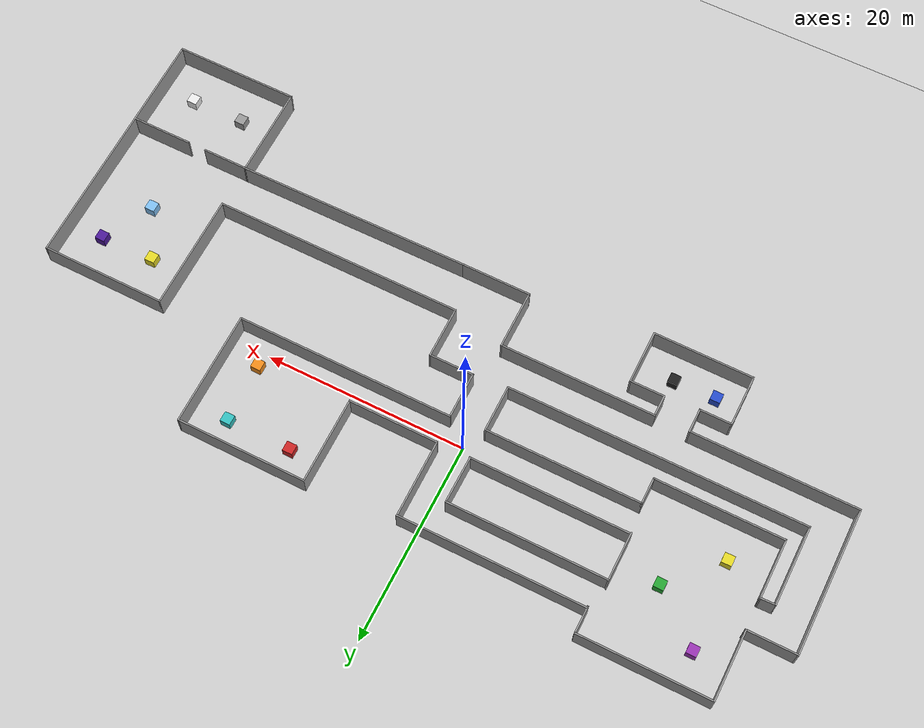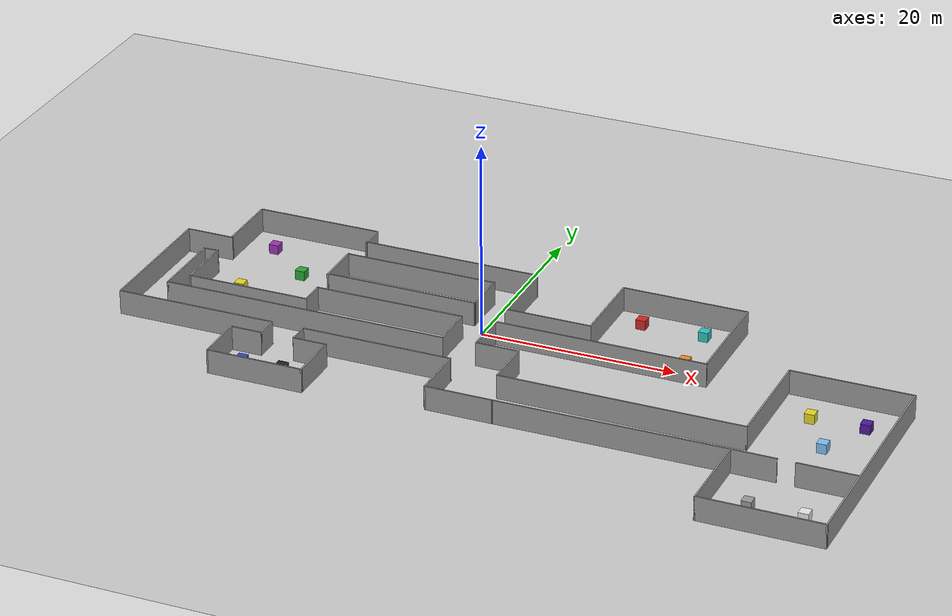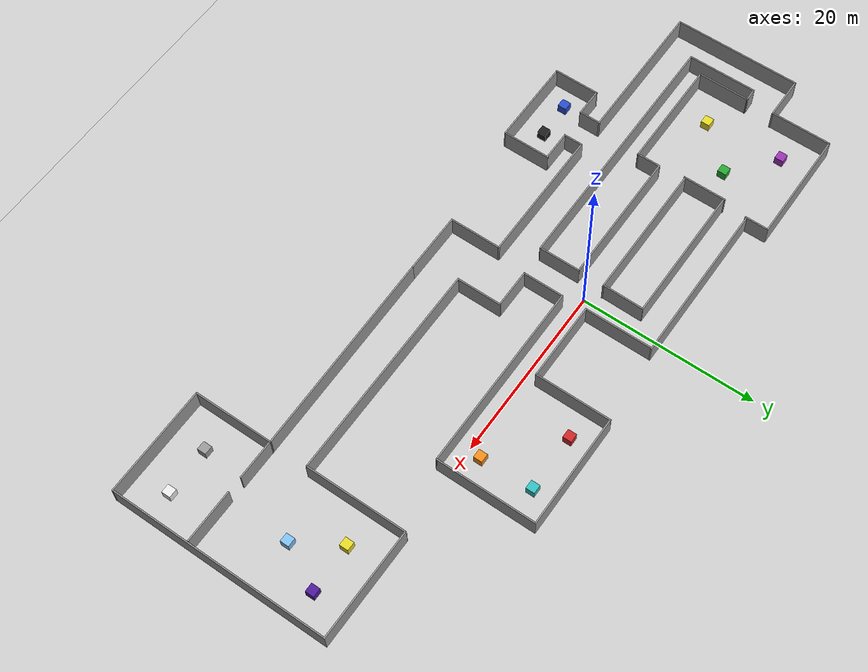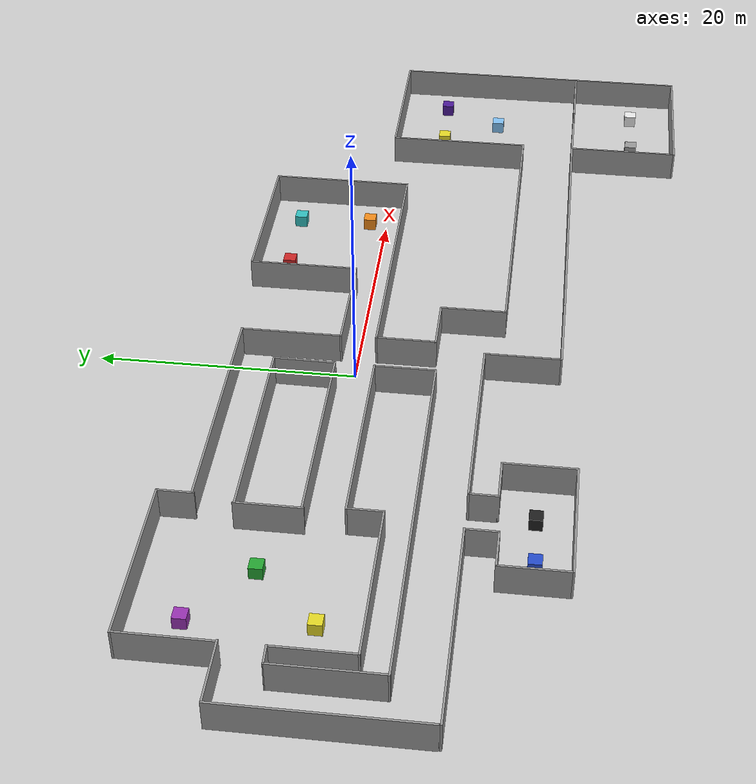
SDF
<sdf version="1.6">
 <world name="default">
  <light name="sun" type="directional">
   <pose>0 0 10 0 -0 0</pose>
   <diffuse>0.8 0.8 0.8 1</diffuse>
   <specular>0.2 0.2 0.2 1</specular>
   <attenuation>
    <range>1000</range>
    <constant>0.9</constant>
    <linear>0.01</linear>
    <quadratic>0.001</quadratic>
   </attenuation>
   <direction>-0.5 0.1 -0.9</direction>
  </light>
  <model name="ground_plane">
   <static>1</static>
   <link name="link">
    <collision name="collision">
     <geometry><plane><normal>0 0 1</normal><size>100 100</size></plane></geometry>
     <surface><friction><ode><mu>100</mu><mu2>50</mu2></ode></friction></surface>
    </collision>
    <visual name="visual">
     <cast_shadows>0</cast_shadows>
     <geometry><plane><normal>0 0 1</normal><size>100 100</size></plane></geometry>
     <material>
      <script><uri>file://media/materials/scripts/gazebo.material</uri><name>Gazebo/Grey</name></script>
     </material>
    </visual>
    <velocity_decay><linear>0</linear><angular>0</angular></velocity_decay>
   </link>
  </model>
  <physics type="ode">
   <gravity>0.000000 0.000000 -9.810000</gravity>
   <ode>
    <solver><type>quick</type><iters>20</iters><sor>1.000000</sor></solver>
    <constraints>
     <cfm>0.000000</cfm>
     <erp>0.200000</erp>
     <contact_max_correcting_vel>100.000000</contact_max_correcting_vel>
     <contact_surface_layer>0.000000</contact_surface_layer>
    </constraints>
   </ode>
   <real_time_update_rate>1000.000000</real_time_update_rate>
   <max_step_size>0.001000</max_step_size>
   <real_time_factor>1.000000</real_time_factor>
   <max_contacts>20</max_contacts>
  </physics>
  <real_time_update_rate>1000</real_time_update_rate>
  <gravity>0 0 -9.81</gravity>
  <scene><ambient>0.4 0.4 0.4 1</ambient><background>0.7 0.7 0.7 1</background><shadows>1</shadows></scene>
  <spherical_coordinates>
   <surface_model>EARTH_WGS84</surface_model>
   <latitude_deg>0</latitude_deg>
   <longitude_deg>0</longitude_deg>
   <elevation>0</elevation>
   <heading_deg>0</heading_deg>
  </spherical_coordinates>
  <model name="factory.world">
   <pose>4.7064 -6.5088 0 0 -0 0</pose>
   <link name="Wall_1">
    <collision name="Wall_1_Collision">
     <geometry><box><size>15.75 0.15 2.5</size></box></geometry>
     <pose>0 0 1.25 0 -0 0</pose>
    </collision>
    <visual name="Wall_1_Visual">
     <pose>0 0 1.25 0 -0 0</pose>
     <geometry><box><size>15.75 0.15 2.5</size></box></geometry>
     <material>
      <script><uri>file://media/materials/scripts/gazebo.material</uri><name>Gazebo/Grey</name></script>
      <ambient>1 1 1 1</ambient>
     </material>
     <meta><layer>0</layer></meta>
    </visual>
    <pose>-13.8517 7.84663 0 0 -0 0</pose>
   </link>
   <link name="Wall_10">
    <collision name="Wall_10_Collision">
     <geometry><box><size>15.8214 0.15 2.5</size></box></geometry>
     <pose>0 0 1.25 0 -0 0</pose>
    </collision>
    <visual name="Wall_10_Visual">
     <pose>0 0 1.25 0 -0 0</pose>
     <geometry><box><size>15.8214 0.15 2.5</size></box></geometry>
     <material>
      <script><uri>file://media/materials/scripts/gazebo.material</uri><name>Gazebo/Grey</name></script>
      <ambient>1 1 1 1</ambient>
     </material>
     <meta><layer>0</layer></meta>
    </visual>
    <pose>-13.8927 12.5223 0 0 -0 3.14146</pose>
   </link>
   <link name="Wall_16">
    <collision name="Wall_16_Collision">
     <geometry><box><size>18.5 0.15 2.5</size></box></geometry>
     <pose>0 0 1.25 0 -0 0</pose>
    </collision>
    <visual name="Wall_16_Visual">
     <pose>0 0 1.25 0 -0 0</pose>
     <geometry><box><size>18.5 0.15 2.5</size></box></geometry>
     <material>
      <script><uri>file://media/materials/scripts/gazebo.material</uri><name>Gazebo/Grey</name></script>
      <ambient>1 1 1 1</ambient>
     </material>
     <meta><layer>0</layer></meta>
    </visual>
    <pose>-11.9522 15.5984 0 0 -0 0</pose>
   </link>
   <link name="Wall_18">
    <collision name="Wall_18_Collision">
     <geometry><box><size>29.5 0.15 2.5</size></box></geometry>
     <pose>0 0 1.25 0 -0 0</pose>
    </collision>
    <visual name="Wall_18_Visual">
     <pose>0 0 1.25 0 -0 0</pose>
     <geometry><box><size>29.5 0.15 2.5</size></box></geometry>
     <material>
      <script><uri>file://media/materials/scripts/gazebo.material</uri><name>Gazebo/Grey</name></script>
      <ambient>1 1 1 1</ambient>
     </material>
     <meta><layer>0</layer></meta>
    </visual>
    <pose>-20.7862 0.187052 0 0 -0 0</pose>
   </link>
   <link name="Wall_2">
    <collision name="Wall_2_Collision">
     <geometry><box><size>4.79572 0.15 2.5</size></box></geometry>
     <pose>0 0 1.25 0 -0 0</pose>
    </collision>
    <visual name="Wall_2_Visual">
     <pose>0 0 1.25 0 -0 0</pose>
     <geometry><box><size>4.79572 0.15 2.5</size></box></geometry>
     <material>
      <script><uri>file://media/materials/scripts/gazebo.material</uri><name>Gazebo/Grey</name></script>
      <ambient>1 1 1 1</ambient>
     </material>
     <meta><layer>0</layer></meta>
    </visual>
    <pose>-6.06672 10.1694 0 0 -0 1.55761</pose>
   </link>
   <link name="Wall_22">
    <collision name="Wall_22_Collision">
     <geometry><box><size>4.75 0.15 2.5</size></box></geometry>
     <pose>0 0 1.25 0 -0 0</pose>
    </collision>
    <visual name="Wall_22_Visual">
     <pose>0 0 1.25 0 -0 0</pose>
     <geometry><box><size>4.75 0.15 2.5</size></box></geometry>
     <material>
      <script><uri>file://media/materials/scripts/gazebo.material</uri><name>Gazebo/Grey</name></script>
      <ambient>1 1 1 1</ambient>
     </material>
     <meta><layer>0</layer></meta>
    </visual>
    <pose>-6.10479 2.53652 0 0 0 -1.5708</pose>
   </link>
   <link name="Wall_24">
    <collision name="Wall_24_Collision">
     <geometry><box><size>5 0.15 2.5</size></box></geometry>
     <pose>0 0 1.25 0 -0 0</pose>
    </collision>
    <visual name="Wall_24_Visual">
     <pose>0 0 1.25 0 -0 0</pose>
     <geometry><box><size>5 0.15 2.5</size></box></geometry>
     <material>
      <script><uri>file://media/materials/scripts/gazebo.material</uri><name>Gazebo/Grey</name></script>
      <ambient>1 1 1 1</ambient>
     </material>
     <meta><layer>0</layer></meta>
    </visual>
    <pose>-21.7643 10.1851 0 0 0 -1.5708</pose>
   </link>
   <link name="Wall_26">
    <collision name="Wall_26_Collision">
     <geometry><box><size>2.75 0.15 2.5</size></box></geometry>
     <pose>0 0 1.25 0 -0 0</pose>
    </collision>
    <visual name="Wall_26_Visual">
     <pose>0 0 1.25 0 -0 0</pose>
     <geometry><box><size>2.75 0.15 2.5</size></box></geometry>
     <material>
      <script><uri>file://media/materials/scripts/gazebo.material</uri><name>Gazebo/Grey</name></script>
      <ambient>1 1 1 1</ambient>
     </material>
     <meta><layer>0</layer></meta>
    </visual>
    <pose>-21.4548 3.53652 0 0 0 -1.5708</pose>
   </link>
   <link name="Wall_27">
    <collision name="Wall_27_Collision">
     <geometry><box><size>12.75 0.15 2.5</size></box></geometry>
     <pose>0 0 1.25 0 -0 0</pose>
    </collision>
    <visual name="Wall_27_Visual">
     <pose>0 0 1.25 0 -0 0</pose>
     <geometry><box><size>12.75 0.15 2.5</size></box></geometry>
     <material>
      <script><uri>file://media/materials/scripts/gazebo.material</uri><name>Gazebo/Grey</name></script>
      <ambient>1 1 1 1</ambient>
     </material>
     <meta><layer>0</layer></meta>
    </visual>
    <pose>-27.7548 2.23652 0 0 -0 3.14159</pose>
   </link>
   <link name="Wall_29">
    <collision name="Wall_29_Collision">
     <geometry><box><size>13 0.15 2.5</size></box></geometry>
     <pose>0 0 1.25 0 -0 0</pose>
    </collision>
    <visual name="Wall_29_Visual">
     <pose>0 0 1.25 0 -0 0</pose>
     <geometry><box><size>13 0.15 2.5</size></box></geometry>
     <material>
      <script><uri>file://media/materials/scripts/gazebo.material</uri><name>Gazebo/Grey</name></script>
      <ambient>1 1 1 1</ambient>
     </material>
     <meta><layer>0</layer></meta>
    </visual>
    <pose>-27.6298 18.0865 0 0 -0 0</pose>
   </link>
   <link name="Wall_31">
    <collision name="Wall_31_Collision">
     <geometry><box><size>2.75 0.15 2.5</size></box></geometry>
     <pose>0 0 1.25 0 -0 0</pose>
    </collision>
    <visual name="Wall_31_Visual">
     <pose>0 0 1.25 0 -0 0</pose>
     <geometry><box><size>2.75 0.15 2.5</size></box></geometry>
     <material>
      <script><uri>file://media/materials/scripts/gazebo.material</uri><name>Gazebo/Grey</name></script>
      <ambient>1 1 1 1</ambient>
     </material>
     <meta><layer>0</layer></meta>
    </visual>
    <pose>-21.1712 16.7852 0 0 0 -1.5708</pose>
   </link>
   <link name="Wall_33">
    <collision name="Wall_33_Collision">
     <geometry><box><size>14.5 0.15 2.5</size></box></geometry>
     <pose>0 0 1.25 0 -0 0</pose>
    </collision>
    <visual name="Wall_33_Visual">
     <pose>0 0 1.25 0 -0 0</pose>
     <geometry><box><size>14.5 0.15 2.5</size></box></geometry>
     <material>
      <script><uri>file://media/materials/scripts/gazebo.material</uri><name>Gazebo/Grey</name></script>
      <ambient>1 1 1 1</ambient>
     </material>
     <meta><layer>0</layer></meta>
    </visual>
    <pose>-38.8491 4.05071 0 0 -0 1.5708</pose>
   </link>
   <link name="Wall_34">
    <collision name="Wall_34_Collision">
     <geometry><box><size>5 0.15 2.5</size></box></geometry>
     <pose>0 0 1.25 0 -0 0</pose>
    </collision>
    <visual name="Wall_34_Visual">
     <pose>0 0 1.25 0 -0 0</pose>
     <geometry><box><size>5 0.15 2.5</size></box></geometry>
     <material>
      <script><uri>file://media/materials/scripts/gazebo.material</uri><name>Gazebo/Grey</name></script>
      <ambient>1 1 1 1</ambient>
     </material>
     <meta><layer>0</layer></meta>
    </visual>
    <pose>-36.4241 11.2257 0 0 -0 0</pose>
   </link>
   <link name="Wall_36">
    <collision name="Wall_36_Collision">
     <geometry><box><size>7 0.15 2.5</size></box></geometry>
     <pose>0 0 1.25 0 -0 0</pose>
    </collision>
    <visual name="Wall_36_Visual">
     <pose>0 0 1.25 0 -0 0</pose>
     <geometry><box><size>7 0.15 2.5</size></box></geometry>
     <material>
      <script><uri>file://media/materials/scripts/gazebo.material</uri><name>Gazebo/Grey</name></script>
      <ambient>1 1 1 1</ambient>
     </material>
     <meta><layer>0</layer></meta>
    </visual>
    <pose>-34.0548 14.6615 0 0 0 -1.5708</pose>
   </link>
   <link name="Wall_38">
    <collision name="Wall_38_Collision">
     <geometry><box><size>6 0.15 2.5</size></box></geometry>
     <pose>0 0 1.25 0 -0 0</pose>
    </collision>
    <visual name="Wall_38_Visual">
     <pose>0 0 1.25 0 -0 0</pose>
     <geometry><box><size>6 0.15 2.5</size></box></geometry>
     <material>
      <script><uri>file://media/materials/scripts/gazebo.material</uri><name>Gazebo/Grey</name></script>
      <ambient>1 1 1 1</ambient>
     </material>
     <meta><layer>0</layer></meta>
    </visual>
    <pose>-34.0548 5.16152 0 0 -0 1.5708</pose>
   </link>
   <link name="Wall_40">
    <collision name="Wall_40_Collision">
     <geometry><box><size>8 0.15 2.5</size></box></geometry>
     <pose>0 0 1.25 0 -0 0</pose>
    </collision>
    <visual name="Wall_40_Visual">
     <pose>0 0 1.25 0 -0 0</pose>
     <geometry><box><size>8 0.15 2.5</size></box></geometry>
     <material>
      <script><uri>file://media/materials/scripts/gazebo.material</uri><name>Gazebo/Grey</name></script>
      <ambient>1 1 1 1</ambient>
     </material>
     <meta><layer>0</layer></meta>
    </visual>
    <pose>-35.4612 4.11205 0 0 -0 1.5708</pose>
   </link>
   <link name="Wall_41">
    <collision name="Wall_41_Collision">
     <geometry><box><size>1.55732 0.15 2.5</size></box></geometry>
     <pose>0 0 1.25 0 -0 0</pose>
    </collision>
    <visual name="Wall_41_Visual">
     <pose>0 0 1.25 0 -0 0</pose>
     <geometry><box><size>1.55732 0.15 2.5</size></box></geometry>
     <material>
      <script><uri>file://media/materials/scripts/gazebo.material</uri><name>Gazebo/Grey</name></script>
      <ambient>1 1 1 1</ambient>
     </material>
     <meta><layer>0</layer></meta>
    </visual>
    <pose>-34.758 8.06178 0 0 -0 0.035155</pose>
   </link>
   <link name="Wall_43">
    <collision name="Wall_43_Collision">
     <geometry><box><size>9 0.15 2.5</size></box></geometry>
     <pose>0 0 1.25 0 -0 0</pose>
    </collision>
    <visual name="Wall_43_Visual">
     <pose>0 0 1.25 0 -0 0</pose>
     <geometry><box><size>9 0.15 2.5</size></box></geometry>
     <material>
      <script><uri>file://media/materials/scripts/gazebo.material</uri><name>Gazebo/Grey</name></script>
      <ambient>1 1 1 1</ambient>
     </material>
     <meta><layer>0</layer></meta>
    </visual>
    <pose>1.62408 7.86349 0 0 -0 0</pose>
   </link>
   <link name="Wall_44">
    <collision name="Wall_44_Collision">
     <geometry><box><size>8.75 0.15 2.5</size></box></geometry>
     <pose>0 0 1.25 0 -0 0</pose>
    </collision>
    <visual name="Wall_44_Visual">
     <pose>0 0 1.25 0 -0 0</pose>
     <geometry><box><size>8.75 0.15 2.5</size></box></geometry>
     <material>
      <script><uri>file://media/materials/scripts/gazebo.material</uri><name>Gazebo/Grey</name></script>
      <ambient>1 1 1 1</ambient>
     </material>
     <meta><layer>0</layer></meta>
    </visual>
    <pose>6.04908 12.1635 0 0 -0 1.5708</pose>
   </link>
   <link name="Wall_45">
    <collision name="Wall_45_Collision">
     <geometry><box><size>13 0.15 2.5</size></box></geometry>
     <pose>0 0 1.25 0 -0 0</pose>
    </collision>
    <visual name="Wall_45_Visual">
     <pose>0 0 1.25 0 -0 0</pose>
     <geometry><box><size>13 0.15 2.5</size></box></geometry>
     <material>
      <script><uri>file://media/materials/scripts/gazebo.material</uri><name>Gazebo/Grey</name></script>
      <ambient>1 1 1 1</ambient>
     </material>
     <meta><layer>0</layer></meta>
    </visual>
    <pose>12.4741 16.4635 0 0 -0 0</pose>
   </link>
   <link name="Wall_46">
    <collision name="Wall_46_Collision">
     <geometry><box><size>11.5 0.15 2.5</size></box></geometry>
     <pose>0 0 1.25 0 -0 0</pose>
    </collision>
    <visual name="Wall_46_Visual">
     <pose>0 0 1.25 0 -0 0</pose>
     <geometry><box><size>11.5 0.15 2.5</size></box></geometry>
     <material>
      <script><uri>file://media/materials/scripts/gazebo.material</uri><name>Gazebo/Grey</name></script>
      <ambient>1 1 1 1</ambient>
     </material>
     <meta><layer>0</layer></meta>
    </visual>
    <pose>18.8991 10.7885 0 0 0 -1.5708</pose>
   </link>
   <link name="Wall_47">
    <collision name="Wall_47_Collision">
     <geometry><box><size>21.75 0.15 2.5</size></box></geometry>
     <pose>0 0 1.25 0 -0 0</pose>
    </collision>
    <visual name="Wall_47_Visual">
     <pose>0 0 1.25 0 -0 0</pose>
     <geometry><box><size>21.75 0.15 2.5</size></box></geometry>
     <material>
      <script><uri>file://media/materials/scripts/gazebo.material</uri><name>Gazebo/Grey</name></script>
      <ambient>1 1 1 1</ambient>
     </material>
     <meta><layer>0</layer></meta>
    </visual>
    <pose>8.09908 5.11349 0 0 -0 3.14159</pose>
   </link>
   <link name="Wall_48">
    <collision name="Wall_48_Collision">
     <geometry><box><size>4.75 0.15 2.5</size></box></geometry>
     <pose>0 0 1.25 0 -0 0</pose>
    </collision>
    <visual name="Wall_48_Visual">
     <pose>0 0 1.25 0 -0 0</pose>
     <geometry><box><size>4.75 0.15 2.5</size></box></geometry>
     <material>
      <script><uri>file://media/materials/scripts/gazebo.material</uri><name>Gazebo/Grey</name></script>
      <ambient>1 1 1 1</ambient>
     </material>
     <meta><layer>0</layer></meta>
    </visual>
    <pose>-2.70092 2.81349 0 0 0 -1.5708</pose>
   </link>
   <link name="Wall_49">
    <collision name="Wall_49_Collision">
     <geometry><box><size>4.5 0.15 2.5</size></box></geometry>
     <pose>0 0 1.25 0 -0 0</pose>
    </collision>
    <visual name="Wall_49_Visual">
     <pose>0 0 1.25 0 -0 0</pose>
     <geometry><box><size>4.5 0.15 2.5</size></box></geometry>
     <material>
      <script><uri>file://media/materials/scripts/gazebo.material</uri><name>Gazebo/Grey</name></script>
      <ambient>1 1 1 1</ambient>
     </material>
     <meta><layer>0</layer></meta>
    </visual>
    <pose>-0.525921 0.513486 0 0 -0 0</pose>
   </link>
   <link name="Wall_5">
    <collision name="Wall_5_Collision">
     <geometry><box><size>7.75 0.15 2.5</size></box></geometry>
     <pose>0 0 1.25 0 -0 0</pose>
    </collision>
    <visual name="Wall_5_Visual">
     <pose>0 0 1.25 0 -0 0</pose>
     <geometry><box><size>7.75 0.15 2.5</size></box></geometry>
     <material>
      <script><uri>file://media/materials/scripts/gazebo.material</uri><name>Gazebo/Grey</name></script>
      <ambient>1 1 1 1</ambient>
     </material>
     <meta><layer>0</layer></meta>
    </visual>
    <pose>-2.80092 11.6635 0 0 -0 1.5708</pose>
   </link>
   <link name="Wall_50">
    <collision name="Wall_50_Collision">
     <geometry><box><size>5.25 0.15 2.5</size></box></geometry>
     <pose>0 0 1.25 0 -0 0</pose>
    </collision>
    <visual name="Wall_50_Visual">
     <pose>0 0 1.25 0 -0 0</pose>
     <geometry><box><size>5.25 0.15 2.5</size></box></geometry>
     <material>
      <script><uri>file://media/materials/scripts/gazebo.material</uri><name>Gazebo/Grey</name></script>
      <ambient>1 1 1 1</ambient>
     </material>
     <meta><layer>0</layer></meta>
    </visual>
    <pose>1.64908 -2.03651 0 0 0 -1.5708</pose>
   </link>
   <link name="Wall_51">
    <collision name="Wall_51_Collision">
     <geometry><box><size>25 0.15 2.5</size></box></geometry>
     <pose>0 0 1.25 0 -0 0</pose>
    </collision>
    <visual name="Wall_51_Visual">
     <pose>0 0 1.25 0 -0 0</pose>
     <geometry><box><size>25 0.15 2.5</size></box></geometry>
     <material>
      <script><uri>file://media/materials/scripts/gazebo.material</uri><name>Gazebo/Grey</name></script>
      <ambient>1 1 1 1</ambient>
     </material>
     <meta><layer>0</layer></meta>
    </visual>
    <pose>14.0741 -4.58651 0 0 -0 0</pose>
   </link>
   <link name="Wall_52">
    <collision name="Wall_52_Collision">
     <geometry><box><size>11.75 0.15 2.5</size></box></geometry>
     <pose>0 0 1.25 0 -0 0</pose>
    </collision>
    <visual name="Wall_52_Visual">
     <pose>0 0 1.25 0 -0 0</pose>
     <geometry><box><size>11.75 0.15 2.5</size></box></geometry>
     <material>
      <script><uri>file://media/materials/scripts/gazebo.material</uri><name>Gazebo/Grey</name></script>
      <ambient>1 1 1 1</ambient>
     </material>
     <meta><layer>0</layer></meta>
    </visual>
    <pose>26.4991 1.21349 0 0 -0 1.5708</pose>
   </link>
   <link name="Wall_53">
    <collision name="Wall_53_Collision">
     <geometry><box><size>12.5 0.15 2.5</size></box></geometry>
     <pose>0 0 1.25 0 -0 0</pose>
    </collision>
    <visual name="Wall_53_Visual">
     <pose>0 0 1.25 0 -0 0</pose>
     <geometry><box><size>12.5 0.15 2.5</size></box></geometry>
     <material>
      <script><uri>file://media/materials/scripts/gazebo.material</uri><name>Gazebo/Grey</name></script>
      <ambient>1 1 1 1</ambient>
     </material>
     <meta><layer>0</layer></meta>
    </visual>
    <pose>32.6741 7.01349 0 0 -0 0</pose>
   </link>
   <link name="Wall_54">
    <collision name="Wall_54_Collision">
     <geometry><box><size>25.25 0.15 2.5</size></box></geometry>
     <pose>0 0 1.25 0 -0 0</pose>
    </collision>
    <visual name="Wall_54_Visual">
     <pose>0 0 1.25 0 -0 0</pose>
     <geometry><box><size>25.25 0.15 2.5</size></box></geometry>
     <material>
      <script><uri>file://media/materials/scripts/gazebo.material</uri><name>Gazebo/Grey</name></script>
      <ambient>1 1 1 1</ambient>
     </material>
     <meta><layer>0</layer></meta>
    </visual>
    <pose>38.8491 -5.53651 0 0 0 -1.5708</pose>
   </link>
   <link name="Wall_55">
    <collision name="Wall_55_Collision">
     <geometry><box><size>12.5 0.15 2.5</size></box></geometry>
     <pose>0 0 1.25 0 -0 0</pose>
    </collision>
    <visual name="Wall_55_Visual">
     <pose>0 0 1.25 0 -0 0</pose>
     <geometry><box><size>12.5 0.15 2.5</size></box></geometry>
     <material>
      <script><uri>file://media/materials/scripts/gazebo.material</uri><name>Gazebo/Grey</name></script>
      <ambient>1 1 1 1</ambient>
     </material>
     <meta><layer>0</layer></meta>
    </visual>
    <pose>32.6741 -18.0865 0 0 -0 3.14159</pose>
   </link>
   <link name="Wall_56">
    <collision name="Wall_56_Collision">
     <geometry><box><size>9.25 0.15 2.5</size></box></geometry>
     <pose>0 0 1.25 0 -0 0</pose>
    </collision>
    <visual name="Wall_56_Visual">
     <pose>0 0 1.25 0 -0 0</pose>
     <geometry><box><size>9.25 0.15 2.5</size></box></geometry>
     <material>
      <script><uri>file://media/materials/scripts/gazebo.material</uri><name>Gazebo/Grey</name></script>
      <ambient>1 1 1 1</ambient>
     </material>
     <meta><layer>0</layer></meta>
    </visual>
    <pose>26.4991 -13.5365 0 0 -0 1.5708</pose>
   </link>
   <link name="Wall_57">
    <collision name="Wall_57_Collision">
     <geometry><box><size>23.5207 0.15 2.5</size></box></geometry>
     <pose>0 0 1.25 0 -0 0</pose>
    </collision>
    <visual name="Wall_57_Visual">
     <pose>0 0 1.25 0 -0 0</pose>
     <geometry><box><size>23.5207 0.15 2.5</size></box></geometry>
     <material>
      <script><uri>file://media/materials/scripts/gazebo.material</uri><name>Gazebo/Grey</name></script>
      <ambient>1 1 1 1</ambient>
     </material>
     <meta><layer>0</layer></meta>
    </visual>
    <pose>14.8141 -9.07777 0 0 0 -3.13378</pose>
   </link>
   <link name="Wall_60">
    <collision name="Wall_60_Collision">
     <geometry><box><size>7 0.15 2.5</size></box></geometry>
     <pose>0 0 1.25 0 -0 0</pose>
    </collision>
    <visual name="Wall_60_Visual">
     <pose>0 0 1.25 0 -0 0</pose>
     <geometry><box><size>7 0.15 2.5</size></box></geometry>
     <material>
      <script><uri>file://media/materials/scripts/gazebo.material</uri><name>Gazebo/Grey</name></script>
      <ambient>1 1 1 1</ambient>
     </material>
     <meta><layer>0</layer></meta>
    </visual>
    <pose>-0.295901 -9.16902 0 0 -0 3.14159</pose>
   </link>
   <link name="Wall_61">
    <collision name="Wall_61_Collision">
     <geometry><box><size>6 0.15 2.5</size></box></geometry>
     <pose>0 0 1.25 0 -0 0</pose>
    </collision>
    <visual name="Wall_61_Visual">
     <pose>0 0 1.25 0 -0 0</pose>
     <geometry><box><size>6 0.15 2.5</size></box></geometry>
     <material>
      <script><uri>file://media/materials/scripts/gazebo.material</uri><name>Gazebo/Grey</name></script>
      <ambient>1 1 1 1</ambient>
     </material>
     <meta><layer>0</layer></meta>
    </visual>
    <pose>-3.7209 -6.24402 0 0 -0 1.5708</pose>
   </link>
   <link name="Wall_65">
    <collision name="Wall_65_Collision">
     <geometry><box><size>15.5 0.15 2.5</size></box></geometry>
     <pose>0 0 1.25 0 -0 0</pose>
    </collision>
    <visual name="Wall_65_Visual">
     <pose>0 0 1.25 0 -0 0</pose>
     <geometry><box><size>15.5 0.15 2.5</size></box></geometry>
     <material>
      <script><uri>file://media/materials/scripts/gazebo.material</uri><name>Gazebo/Grey</name></script>
      <ambient>1 1 1 1</ambient>
     </material>
     <meta><layer>0</layer></meta>
    </visual>
    <pose>-11.3959 -3.31902 0 0 -0 3.14159</pose>
   </link>
   <link name="Wall_66">
    <collision name="Wall_66_Collision">
     <geometry><box><size>2.25 0.15 2.5</size></box></geometry>
     <pose>0 0 1.25 0 -0 0</pose>
    </collision>
    <visual name="Wall_66_Visual">
     <pose>0 0 1.25 0 -0 0</pose>
     <geometry><box><size>2.25 0.15 2.5</size></box></geometry>
     <material>
      <script><uri>file://media/materials/scripts/gazebo.material</uri><name>Gazebo/Grey</name></script>
      <ambient>1 1 1 1</ambient>
     </material>
     <meta><layer>0</layer></meta>
    </visual>
    <pose>-19.0709 -4.36902 0 0 0 -1.5708</pose>
   </link>
   <link name="Wall_67">
    <collision name="Wall_67_Collision">
     <geometry><box><size>3.5 0.15 2.5</size></box></geometry>
     <pose>0 0 1.25 0 -0 0</pose>
    </collision>
    <visual name="Wall_67_Visual">
     <pose>0 0 1.25 0 -0 0</pose>
     <geometry><box><size>3.5 0.15 2.5</size></box></geometry>
     <material>
      <script><uri>file://media/materials/scripts/gazebo.material</uri><name>Gazebo/Grey</name></script>
      <ambient>1 1 1 1</ambient>
     </material>
     <meta><layer>0</layer></meta>
    </visual>
    <pose>-17.3959 -5.41902 0 0 -0 0</pose>
   </link>
   <link name="Wall_68">
    <collision name="Wall_68_Collision">
     <geometry><box><size>5.5 0.15 2.5</size></box></geometry>
     <pose>0 0 1.25 0 -0 0</pose>
    </collision>
    <visual name="Wall_68_Visual">
     <pose>0 0 1.25 0 -0 0</pose>
     <geometry><box><size>5.5 0.15 2.5</size></box></geometry>
     <material>
      <script><uri>file://media/materials/scripts/gazebo.material</uri><name>Gazebo/Grey</name></script>
      <ambient>1 1 1 1</ambient>
     </material>
     <meta><layer>0</layer></meta>
    </visual>
    <pose>-15.7209 -8.09402 0 0 0 -1.5708</pose>
   </link>
   <link name="Wall_69">
    <collision name="Wall_69_Collision">
     <geometry><box><size>10 0.15 2.5</size></box></geometry>
     <pose>0 0 1.25 0 -0 0</pose>
    </collision>
    <visual name="Wall_69_Visual">
     <pose>0 0 1.25 0 -0 0</pose>
     <geometry><box><size>10 0.15 2.5</size></box></geometry>
     <material>
      <script><uri>file://media/materials/scripts/gazebo.material</uri><name>Gazebo/Grey</name></script>
      <ambient>1 1 1 1</ambient>
     </material>
     <meta><layer>0</layer></meta>
    </visual>
    <pose>-20.6459 -10.769 0 0 -0 3.14159</pose>
   </link>
   <link name="Wall_70">
    <collision name="Wall_70_Collision">
     <geometry><box><size>5.25 0.15 2.5</size></box></geometry>
     <pose>0 0 1.25 0 -0 0</pose>
    </collision>
    <visual name="Wall_70_Visual">
     <pose>0 0 1.25 0 -0 0</pose>
     <geometry><box><size>5.25 0.15 2.5</size></box></geometry>
     <material>
      <script><uri>file://media/materials/scripts/gazebo.material</uri><name>Gazebo/Grey</name></script>
      <ambient>1 1 1 1</ambient>
     </material>
     <meta><layer>0</layer></meta>
    </visual>
    <pose>-25.5709 -8.21902 0 0 -0 1.5708</pose>
   </link>
   <link name="Wall_71">
    <collision name="Wall_71_Collision">
     <geometry><box><size>3.25 0.15 2.5</size></box></geometry>
     <pose>0 0 1.25 0 -0 0</pose>
    </collision>
    <visual name="Wall_71_Visual">
     <pose>0 0 1.25 0 -0 0</pose>
     <geometry><box><size>3.25 0.15 2.5</size></box></geometry>
     <material>
      <script><uri>file://media/materials/scripts/gazebo.material</uri><name>Gazebo/Grey</name></script>
      <ambient>1 1 1 1</ambient>
     </material>
     <meta><layer>0</layer></meta>
    </visual>
    <pose>-24.0209 -5.66902 0 0 -0 0</pose>
   </link>
   <link name="Wall_72">
    <collision name="Wall_72_Collision">
     <geometry><box><size>2.5 0.15 2.5</size></box></geometry>
     <pose>0 0 1.25 0 -0 0</pose>
    </collision>
    <visual name="Wall_72_Visual">
     <pose>0 0 1.25 0 -0 0</pose>
     <geometry><box><size>2.5 0.15 2.5</size></box></geometry>
     <material>
      <script><uri>file://media/materials/scripts/gazebo.material</uri><name>Gazebo/Grey</name></script>
      <ambient>1 1 1 1</ambient>
     </material>
     <meta><layer>0</layer></meta>
    </visual>
    <pose>-22.4709 -4.49402 0 0 -0 1.5708</pose>
   </link>
   <link name="Wall_73">
    <collision name="Wall_73_Collision">
     <geometry><box><size>16.5 0.15 2.5</size></box></geometry>
     <pose>0 0 1.25 0 -0 0</pose>
    </collision>
    <visual name="Wall_73_Visual">
     <pose>0 0 1.25 0 -0 0</pose>
     <geometry><box><size>16.5 0.15 2.5</size></box></geometry>
     <material>
      <script><uri>file://media/materials/scripts/gazebo.material</uri><name>Gazebo/Grey</name></script>
      <ambient>1 1 1 1</ambient>
     </material>
     <meta><layer>0</layer></meta>
    </visual>
    <pose>-30.6459 -3.31902 0 0 -0 3.14159</pose>
   </link>
   <link name="Wall_75">
    <collision name="Wall_75_Collision">
     <geometry><box><size>4.5 0.15 2.5</size></box></geometry>
     <pose>0 0 1.25 0 -0 0</pose>
    </collision>
    <visual name="Wall_75_Visual">
     <pose>0 0 1.25 0 -0 0</pose>
     <geometry><box><size>4.5 0.15 2.5</size></box></geometry>
     <material>
      <script><uri>file://media/materials/scripts/gazebo.material</uri><name>Gazebo/Grey</name></script>
      <ambient>1 1 1 1</ambient>
     </material>
     <meta><layer>0</layer></meta>
    </visual>
    <pose>28.7438 -8.99987 0 0 -0 0</pose>
   </link>
   <link name="Wall_77">
    <collision name="Wall_77_Collision">
     <geometry><box><size>6 0.15 2.5</size></box></geometry>
     <pose>0 0 1.25 0 -0 0</pose>
    </collision>
    <visual name="Wall_77_Visual">
     <pose>0 0 1.25 0 -0 0</pose>
     <geometry><box><size>6 0.15 2.5</size></box></geometry>
     <material>
      <script><uri>file://media/materials/scripts/gazebo.material</uri><name>Gazebo/Grey</name></script>
      <ambient>1 1 1 1</ambient>
     </material>
     <meta><layer>0</layer></meta>
    </visual>
    <pose>35.74 -9.01356 0 0 -0 0</pose>
   </link>
   <link name="Wall_8">
    <collision name="Wall_8_Collision">
     <geometry><box><size>15.5 0.15 2.5</size></box></geometry>
     <pose>0 0 1.25 0 -0 0</pose>
    </collision>
    <visual name="Wall_8_Visual">
     <pose>0 0 1.25 0 -0 0</pose>
     <geometry><box><size>15.5 0.15 2.5</size></box></geometry>
     <material>
      <script><uri>file://media/materials/scripts/gazebo.material</uri><name>Gazebo/Grey</name></script>
      <ambient>1 1 1 1</ambient>
     </material>
     <meta><layer>0</layer></meta>
    </visual>
    <pose>-13.7798 4.83652 0 0 -0 0</pose>
   </link>
   <static>1</static>
  </model>
  <model name="unit_box">
   <pose>-26.0455 7.90506 0.499995 0 1e-05 0</pose>
   <link name="link">
    <inertial>
     <mass>1</mass>
     <inertia>
      <ixx>0.166667</ixx>
      <ixy>0</ixy>
      <ixz>0</ixz>
      <iyy>0.166667</iyy>
      <iyz>0</iyz>
      <izz>0.166667</izz>
     </inertia>
    </inertial>
    <collision name="collision"><geometry><box><size>1 1 1</size></box></geometry></collision>
    <visual name="visual">
     <geometry><box><size>1 1 1</size></box></geometry>
     <material>
      <script><name>Gazebo/Purple</name><uri>file://media/materials/scripts/gazebo.material</uri></script>
     </material>
    </visual>
   </link>
  </model>
  <model name="unit_box_0">
   <pose>-25.5649 -0.916975 0.499995 -1e-05 0 0</pose>
   <link name="link">
    <inertial>
     <mass>1</mass>
     <inertia>
      <ixx>0.166667</ixx>
      <ixy>0</ixy>
      <ixz>0</ixz>
      <iyy>0.166667</iyy>
      <iyz>0</iyz>
      <izz>0.166667</izz>
     </inertia>
    </inertial>
    <collision name="collision"><geometry><box><size>1 1 1</size></box></geometry></collision>
    <visual name="visual">
     <geometry><box><size>1 1 1</size></box></geometry>
     <material>
      <script><name>Gazebo/DarkYellow</name><uri>file://media/materials/scripts/gazebo.material</uri></script>
     </material>
    </visual>
   </link>
  </model>
  <model name="unit_box_1">
   <pose>-21.1547 3.78625 0.499995 0 1e-05 0</pose>
   <link name="link">
    <inertial>
     <mass>1</mass>
     <inertia>
      <ixx>0.166667</ixx>
      <ixy>0</ixy>
      <ixz>0</ixz>
      <iyy>0.166667</iyy>
      <iyz>0</iyz>
      <izz>0.166667</izz>
     </inertia>
    </inertial>
    <collision name="collision"><geometry><box><size>1 1 1</size></box></geometry></collision>
    <visual name="visual">
     <geometry><box><size>1 1 1</size></box></geometry>
     <material>
      <script><name>Gazebo/Green</name><uri>file://media/materials/scripts/gazebo.material</uri></script>
     </material>
    </visual>
   </link>
  </model>
  <model name="unit_box_2">
   <pose>13.7613 7.33983 0.499995 -1e-05 0 0</pose>
   <link name="link">
    <inertial>
     <mass>1</mass>
     <inertia>
      <ixx>0.166667</ixx>
      <ixy>0</ixy>
      <ixz>0</ixz>
      <iyy>0.166667</iyy>
      <iyz>0</iyz>
      <izz>0.166667</izz>
     </inertia>
    </inertial>
    <collision name="collision"><geometry><box><size>1 1 1</size></box></geometry></collision>
    <visual name="visual">
     <geometry><box><size>1 1 1</size></box></geometry>
     <material>
      <script><name>Gazebo/Red</name><uri>file://media/materials/scripts/gazebo.material</uri></script>
     </material>
    </visual>
   </link>
  </model>
  <model name="unit_box_3">
   <pose>20.1969 7.38733 0.499995 0 1e-05 0</pose>
   <link name="link">
    <inertial>
     <mass>1</mass>
     <inertia>
      <ixx>0.166667</ixx>
      <ixy>0</ixy>
      <ixz>0</ixz>
      <iyy>0.166667</iyy>
      <iyz>0</iyz>
      <izz>0.166667</izz>
     </inertia>
    </inertial>
    <collision name="collision"><geometry><box><size>1 1 1</size></box></geometry></collision>
    <visual name="visual">
     <geometry><box><size>1 1 1</size></box></geometry>
     <material>
      <script><name>Gazebo/Turquoise</name><uri>file://media/materials/scripts/gazebo.material</uri></script>
     </material>
    </visual>
   </link>
  </model>
  <model name="unit_box_4">
   <pose>20.4029 1.44436 0.499995 -1e-05 0 0</pose>
   <link name="link">
    <inertial>
     <mass>1</mass>
     <inertia>
      <ixx>0.166667</ixx>
      <ixy>0</ixy>
      <ixz>0</ixz>
      <iyy>0.166667</iyy>
      <iyz>0</iyz>
      <izz>0.166667</izz>
     </inertia>
    </inertial>
    <collision name="collision"><geometry><box><size>1 1 1</size></box></geometry></collision>
    <visual name="visual">
     <geometry><box><size>1 1 1</size></box></geometry>
     <material>
      <script><name>Gazebo/Orange</name><uri>file://media/materials/scripts/gazebo.material</uri></script>
     </material>
    </visual>
   </link>
  </model>
  <model name="unit_box_5">
   <pose>-18.5713 -14.7194 0.499995 0 1e-05 0</pose>
   <link name="link">
    <inertial>
     <mass>1</mass>
     <inertia>
      <ixx>0.166667</ixx>
      <ixy>0</ixy>
      <ixz>0</ixz>
      <iyy>0.166667</iyy>
      <iyz>0</iyz>
      <izz>0.166667</izz>
     </inertia>
    </inertial>
    <collision name="collision"><geometry><box><size>1 1 1</size></box></geometry></collision>
    <visual name="visual">
     <geometry><box><size>1 1 1</size></box></geometry>
     <material>
      <script><name>Gazebo/Blue</name><uri>file://media/materials/scripts/gazebo.material</uri></script>
     </material>
    </visual>
   </link>
  </model>
  <model name="unit_box_6">
   <pose>-14.4158 -14.5849 0.499995 -1e-05 0 0</pose>
   <link name="link">
    <inertial>
     <mass>1</mass>
     <inertia>
      <ixx>0.166667</ixx>
      <ixy>0</ixy>
      <ixz>0</ixz>
      <iyy>0.166667</iyy>
      <iyz>0</iyz>
      <izz>0.166667</izz>
     </inertia>
    </inertial>
    <collision name="collision"><geometry><box><size>1 1 1</size></box></geometry></collision>
    <visual name="visual">
     <geometry><box><size>1 1 1</size></box></geometry>
     <material>
      <script><name>Gazebo/Black</name><uri>file://media/materials/scripts/gazebo.material</uri></script>
     </material>
    </visual>
   </link>
  </model>
  <model name="unit_box_7">
   <pose>34.8625 -3.706 0.499995 0 1e-05 0</pose>
   <link name="link">
    <inertial>
     <mass>1</mass>
     <inertia>
      <ixx>0.166667</ixx>
      <ixy>0</ixy>
      <ixz>0</ixz>
      <iyy>0.166667</iyy>
      <iyz>0</iyz>
      <izz>0.166667</izz>
     </inertia>
    </inertial>
    <collision name="collision"><geometry><box><size>1 1 1</size></box></geometry></collision>
    <visual name="visual">
     <geometry><box><size>1 1 1</size></box></geometry>
     <material>
      <script><name>Gazebo/Yellow</name><uri>file://media/materials/scripts/gazebo.material</uri></script>
     </material>
    </visual>
   </link>
  </model>
  <model name="unit_box_8">
   <pose>40.2631 -3.55558 0.499995 -1e-05 0 0</pose>
   <link name="link">
    <inertial>
     <mass>1</mass>
     <inertia>
      <ixx>0.166667</ixx>
      <ixy>0</ixy>
      <ixz>0</ixz>
      <iyy>0.166667</iyy>
      <iyz>0</iyz>
      <izz>0.166667</izz>
     </inertia>
    </inertial>
    <collision name="collision"><geometry><box><size>1 1 1</size></box></geometry></collision>
    <visual name="visual">
     <geometry><box><size>1 1 1</size></box></geometry>
     <material>
      <script><name>Gazebo/Indigo</name><uri>file://media/materials/scripts/gazebo.material</uri></script>
     </material>
    </visual>
   </link>
  </model>
  <model name="unit_box_9">
   <pose>37.7124 -8.50041 0.499995 0 1e-05 0</pose>
   <link name="link">
    <inertial>
     <mass>1</mass>
     <inertia>
      <ixx>0.166667</ixx>
      <ixy>0</ixy>
      <ixz>0</ixz>
      <iyy>0.166667</iyy>
      <iyz>0</iyz>
      <izz>0.166667</izz>
     </inertia>
    </inertial>
    <collision name="collision"><geometry><box><size>1 1 1</size></box></geometry></collision>
    <visual name="visual">
     <geometry><box><size>1 1 1</size></box></geometry>
     <material>
      <script><name>Gazebo/SkyBlue</name><uri>file://media/materials/scripts/gazebo.material</uri></script>
     </material>
    </visual>
   </link>
  </model>
  <model name="unit_box_10">
   <pose>34.8765 -20.8602 0.499995 -1e-05 0 0</pose>
   <link name="link">
    <inertial>
     <mass>1</mass>
     <inertia>
      <ixx>0.166667</ixx>
      <ixy>0</ixy>
      <ixz>0</ixz>
      <iyy>0.166667</iyy>
      <iyz>0</iyz>
      <izz>0.166667</izz>
     </inertia>
    </inertial>
    <collision name="collision"><geometry><box><size>1 1 1</size></box></geometry></collision>
    <visual name="visual">
     <geometry><box><size>1 1 1</size></box></geometry>
     <material>
      <script><name>Gazebo/Grey</name><uri>file://media/materials/scripts/gazebo.material</uri></script>
     </material>
    </visual>
   </link>
  </model>
  <model name="unit_box_11">
   <pose>40.2496 -20.804 0.5 0 -0 0</pose>
   <link name="link">
    <inertial>
     <mass>1</mass>
     <inertia>
      <ixx>0.166667</ixx>
      <ixy>0</ixy>
      <ixz>0</ixz>
      <iyy>0.166667</iyy>
      <iyz>0</iyz>
      <izz>0.166667</izz>
     </inertia>
    </inertial>
    <collision name="collision"><geometry><box><size>1 1 1</size></box></geometry></collision>
    <visual name="visual">
     <geometry><box><size>1 1 1</size></box></geometry>
     <material>
      <script><name>Gazebo/White</name><uri>file://media/materials/scripts/gazebo.material</uri></script>
     </material>
    </visual>
   </link>
  </model>
 </world>
</sdf>
